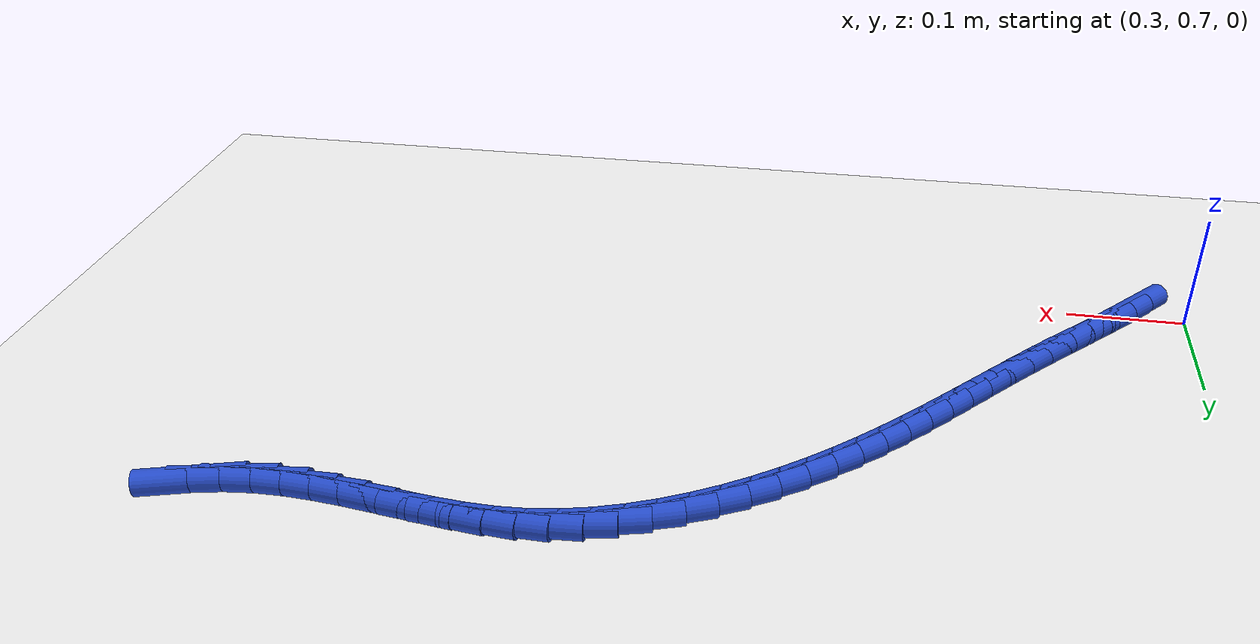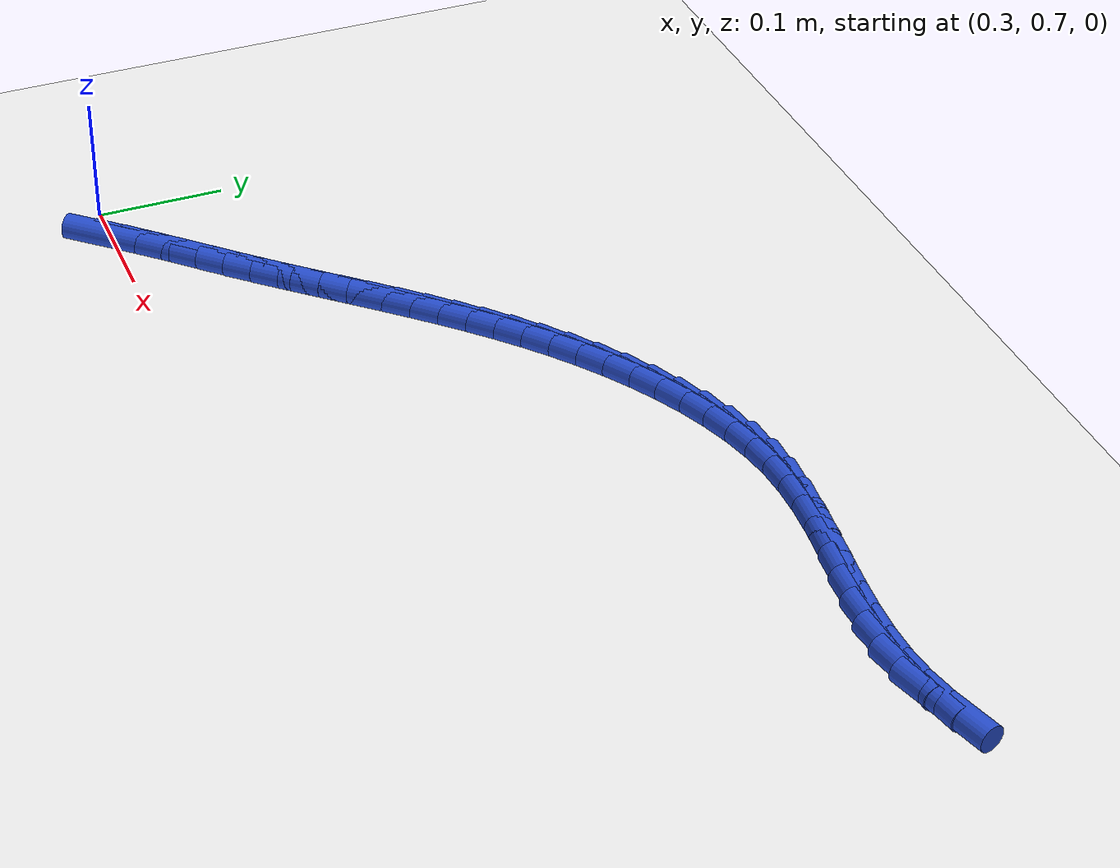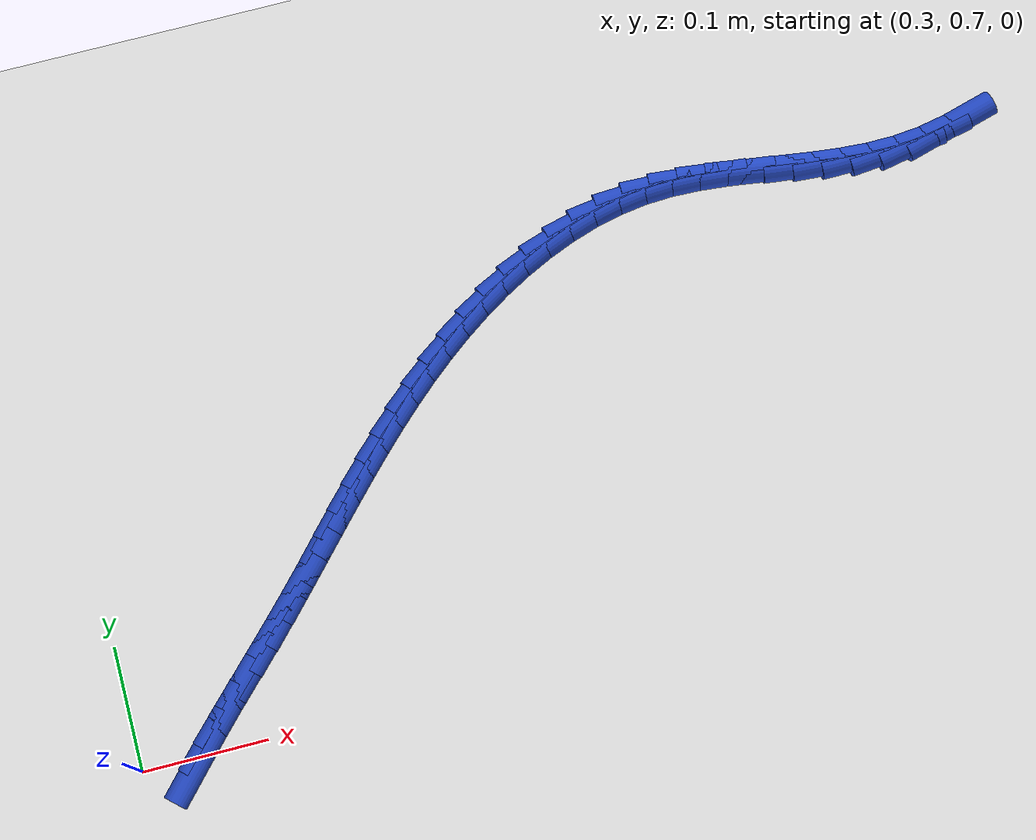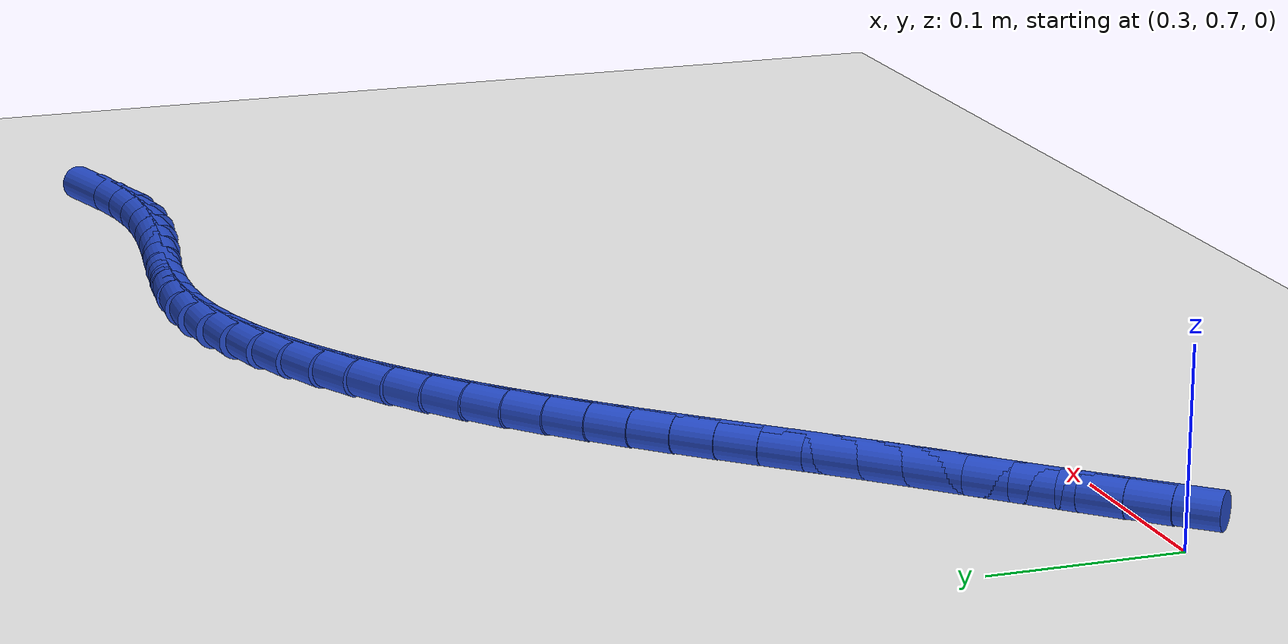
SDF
<sdf version="1.6">
 <world name="default">
  <model name="ground_plane">
   <static>1</static>
   <link name="link">
    <collision name="collision">
     <geometry><plane><normal>0 0 1</normal><size>100 100</size></plane></geometry>
     <surface><friction><ode><mu>100</mu><mu2>50</mu2></ode></friction></surface>
    </collision>
    <visual name="visual">
     <cast_shadows>0</cast_shadows>
     <geometry><plane><normal>0 0 1</normal><size>100 100</size></plane></geometry>
     <material>
      <script><uri>file://media/materials/scripts/gazebo.material</uri><name>Gazebo/WhiteGlow</name></script>
     </material>
    </visual>
   </link>
  </model>
  <model name="line">
   <link name="link_35">
    <pose>0.34696680365258775 0.6989530170740083 0.01 0 1.57 0.8330406091377653</pose>
    <collision name="collision">
     <geometry><cylinder><radius>0.01</radius><length>0.08</length></cylinder></geometry>
    </collision>
    <visual name="visual">
     <material>
      <script><name>Gazebo/Blue</name><uri>file://media/materials/scripts/gazebo.material</uri></script>
     </material>
     <geometry><cylinder><radius>0.01</radius><length>0.08</length></cylinder></geometry>
    </visual>
   </link>
   <link name="link_36">
    <pose>0.362543247465105 0.716089148202582 0.01 0 1.57 0.8127219364148226</pose>
    <collision name="collision">
     <geometry><cylinder><radius>0.01</radius><length>0.08</length></cylinder></geometry>
    </collision>
    <visual name="visual">
     <material>
      <script><name>Gazebo/Blue</name><uri>file://media/materials/scripts/gazebo.material</uri></script>
     </material>
     <geometry><cylinder><radius>0.01</radius><length>0.08</length></cylinder></geometry>
    </visual>
   </link>
   <link name="link_37">
    <pose>0.37852816036490117 0.7329723660112146 0.01 0 1.57 0.8004877120736859</pose>
    <collision name="collision">
     <geometry><cylinder><radius>0.01</radius><length>0.08</length></cylinder></geometry>
    </collision>
    <visual name="visual">
     <material>
      <script><name>Gazebo/Blue</name><uri>file://media/materials/scripts/gazebo.material</uri></script>
     </material>
     <geometry><cylinder><radius>0.01</radius><length>0.08</length></cylinder></geometry>
    </visual>
   </link>
   <link name="link_38">
    <pose>0.39475759877274863 0.749699136484317 0.01 0 1.57 0.7962165194694196</pose>
    <collision name="collision">
     <geometry><cylinder><radius>0.01</radius><length>0.08</length></cylinder></geometry>
    </collision>
    <visual name="visual">
     <material>
      <script><name>Gazebo/Blue</name><uri>file://media/materials/scripts/gazebo.material</uri></script>
     </material>
     <geometry><cylinder><radius>0.01</radius><length>0.08</length></cylinder></geometry>
    </visual>
   </link>
   <link name="link_39">
    <pose>0.4110676191094199 0.7663659256063005 0.01 0 1.57 0.7998707649653242</pose>
    <collision name="collision">
     <geometry><cylinder><radius>0.01</radius><length>0.08</length></cylinder></geometry>
    </collision>
    <visual name="visual">
     <material>
      <script><name>Gazebo/Blue</name><uri>file://media/materials/scripts/gazebo.material</uri></script>
     </material>
     <geometry><cylinder><radius>0.01</radius><length>0.08</length></cylinder></geometry>
    </visual>
   </link>
   <link name="link_40">
    <pose>0.42729427779568707 0.7830691993615756 0.01 0 1.57 0.8111536940769282</pose>
    <collision name="collision">
     <geometry><cylinder><radius>0.01</radius><length>0.08</length></cylinder></geometry>
    </collision>
    <visual name="visual">
     <material>
      <script><name>Gazebo/Blue</name><uri>file://media/materials/scripts/gazebo.material</uri></script>
     </material>
     <geometry><cylinder><radius>0.01</radius><length>0.08</length></cylinder></geometry>
    </visual>
   </link>
   <link name="link_41">
    <pose>0.4432805434828458 0.7999008960314637 0.01 0 1.57 0.8234440319376947</pose>
    <collision name="collision">
     <geometry><cylinder><radius>0.01</radius><length>0.08</length></cylinder></geometry>
    </collision>
    <visual name="visual">
     <material>
      <script><name>Gazebo/Blue</name><uri>file://media/materials/scripts/gazebo.material</uri></script>
     </material>
     <geometry><cylinder><radius>0.01</radius><length>0.08</length></cylinder></geometry>
    </visual>
   </link>
   <link name="link_42">
    <pose>0.4590017257110101 0.8168662669372408 0.01 0 1.57 0.8306716103659707</pose>
    <collision name="collision">
     <geometry><cylinder><radius>0.01</radius><length>0.08</length></cylinder></geometry>
    </collision>
    <visual name="visual">
     <material>
      <script><name>Gazebo/Blue</name><uri>file://media/materials/scripts/gazebo.material</uri></script>
     </material>
     <geometry><cylinder><radius>0.01</radius><length>0.08</length></cylinder></geometry>
    </visual>
   </link>
   <link name="link_43">
    <pose>0.4745521754985508 0.8338925879236561 0.01 0 1.57 0.8325608416837419</pose>
    <collision name="collision">
     <geometry><cylinder><radius>0.01</radius><length>0.08</length></cylinder></geometry>
    </collision>
    <visual name="visual">
     <material>
      <script><name>Gazebo/Blue</name><uri>file://media/materials/scripts/gazebo.material</uri></script>
     </material>
     <geometry><cylinder><radius>0.01</radius><length>0.08</length></cylinder></geometry>
    </visual>
   </link>
   <link name="link_44">
    <pose>0.49003048685603245 0.8509043555576565 0.01 0 1.57 0.8290675096566906</pose>
    <collision name="collision">
     <geometry><cylinder><radius>0.01</radius><length>0.08</length></cylinder></geometry>
    </collision>
    <visual name="visual">
     <material>
      <script><name>Gazebo/Blue</name><uri>file://media/materials/scripts/gazebo.material</uri></script>
     </material>
     <geometry><cylinder><radius>0.01</radius><length>0.08</length></cylinder></geometry>
    </visual>
   </link>
   <link name="link_45">
    <pose>0.5055352537940191 0.8678260664061891 0.01 0 1.57 0.8201626127285712</pose>
    <collision name="collision">
     <geometry><cylinder><radius>0.01</radius><length>0.08</length></cylinder></geometry>
    </collision>
    <visual name="visual">
     <material>
      <script><name>Gazebo/Blue</name><uri>file://media/materials/scripts/gazebo.material</uri></script>
     </material>
     <geometry><cylinder><radius>0.01</radius><length>0.08</length></cylinder></geometry>
    </visual>
   </link>
   <link name="link_46">
    <pose>0.5211650703230748 0.8845822170362005 0.01 0 1.57 0.8058357420020107</pose>
    <collision name="collision">
     <geometry><cylinder><radius>0.01</radius><length>0.08</length></cylinder></geometry>
    </collision>
    <visual name="visual">
     <material>
      <script><name>Gazebo/Blue</name><uri>file://media/materials/scripts/gazebo.material</uri></script>
     </material>
     <geometry><cylinder><radius>0.01</radius><length>0.08</length></cylinder></geometry>
    </visual>
   </link>
   <link name="link_47">
    <pose>0.537018530453764 0.9010973040146381 0.01 0 1.57 0.786103111618877</pose>
    <collision name="collision">
     <geometry><cylinder><radius>0.01</radius><length>0.08</length></cylinder></geometry>
    </collision>
    <visual name="visual">
     <material>
      <script><name>Gazebo/Blue</name><uri>file://media/materials/scripts/gazebo.material</uri></script>
     </material>
     <geometry><cylinder><radius>0.01</radius><length>0.08</length></cylinder></geometry>
    </visual>
   </link>
   <link name="link_48">
    <pose>0.5531942281966508 0.9172958239084484 0.01 0 1.57 0.7610200506081204</pose>
    <collision name="collision">
     <geometry><cylinder><radius>0.01</radius><length>0.08</length></cylinder></geometry>
    </collision>
    <visual name="visual">
     <material>
      <script><name>Gazebo/Blue</name><uri>file://media/materials/scripts/gazebo.material</uri></script>
     </material>
     <geometry><cylinder><radius>0.01</radius><length>0.08</length></cylinder></geometry>
    </visual>
   </link>
   <link name="link_49">
    <pose>0.569790757562299 0.9331022732845782 0.01 0 1.57 0.730697314627442</pose>
    <collision name="collision">
     <geometry><cylinder><radius>0.01</radius><length>0.08</length></cylinder></geometry>
    </collision>
    <visual name="visual">
     <material>
      <script><name>Gazebo/Blue</name><uri>file://media/materials/scripts/gazebo.material</uri></script>
     </material>
     <geometry><cylinder><radius>0.01</radius><length>0.08</length></cylinder></geometry>
    </visual>
   </link>
   <link name="link_50">
    <pose>0.5869067125612736 0.9484411487099748 0.01 0 1.57 0.6953199003946172</pose>
    <collision name="collision">
     <geometry><cylinder><radius>0.01</radius><length>0.08</length></cylinder></geometry>
    </collision>
    <visual name="visual">
     <material>
      <script><name>Gazebo/Blue</name><uri>file://media/materials/scripts/gazebo.material</uri></script>
     </material>
     <geometry><cylinder><radius>0.01</radius><length>0.08</length></cylinder></geometry>
    </visual>
   </link>
   <link name="link_51">
    <pose>0.6046406872041376 0.9632369467515843 0.01 0 1.57 0.6551661998020621</pose>
    <collision name="collision">
     <geometry><cylinder><radius>0.01</radius><length>0.08</length></cylinder></geometry>
    </collision>
    <visual name="visual">
     <material>
      <script><name>Gazebo/Blue</name><uri>file://media/materials/scripts/gazebo.material</uri></script>
     </material>
     <geometry><cylinder><radius>0.01</radius><length>0.08</length></cylinder></geometry>
    </visual>
   </link>
   <link name="link_52">
    <pose>0.623091268279836 0.977414159512706 0.01 0 1.57 0.6107275105724828</pose>
    <collision name="collision">
     <geometry><cylinder><radius>0.01</radius><length>0.08</length></cylinder></geometry>
    </collision>
    <visual name="visual">
     <material>
      <script><name>Gazebo/Blue</name><uri>file://media/materials/scripts/gazebo.material</uri></script>
     </material>
     <geometry><cylinder><radius>0.01</radius><length>0.08</length></cylinder></geometry>
    </visual>
   </link>
   <link name="link_53">
    <pose>0.6423208209695195 0.9908748906968274 0.01 0 1.57 0.5622989030775445</pose>
    <collision name="collision">
     <geometry><cylinder><radius>0.01</radius><length>0.08</length></cylinder></geometry>
    </collision>
    <visual name="visual">
     <material>
      <script><name>Gazebo/Blue</name><uri>file://media/materials/scripts/gazebo.material</uri></script>
     </material>
     <geometry><cylinder><radius>0.01</radius><length>0.08</length></cylinder></geometry>
    </visual>
   </link>
   <link name="link_54">
    <pose>0.6622713364170622 1.003446841399776 0.01 0 1.57 0.5092257444733604</pose>
    <collision name="collision">
     <geometry><cylinder><radius>0.01</radius><length>0.08</length></cylinder></geometry>
    </collision>
    <visual name="visual">
     <material>
      <script><name>Gazebo/Blue</name><uri>file://media/materials/scripts/gazebo.material</uri></script>
     </material>
     <geometry><cylinder><radius>0.01</radius><length>0.08</length></cylinder></geometry>
    </visual>
   </link>
   <link name="link_55">
    <pose>0.6828598322182717 1.0149422766886425 0.01 0 1.57 0.4506790373590013</pose>
    <collision name="collision">
     <geometry><cylinder><radius>0.01</radius><length>0.08</length></cylinder></geometry>
    </collision>
    <visual name="visual">
     <material>
      <script><name>Gazebo/Blue</name><uri>file://media/materials/scripts/gazebo.material</uri></script>
     </material>
     <geometry><cylinder><radius>0.01</radius><length>0.08</length></cylinder></geometry>
    </visual>
   </link>
   <link name="link_56">
    <pose>0.7040033259689559 1.025173461630518 0.01 0 1.57 0.3857992374001578</pose>
    <collision name="collision">
     <geometry><cylinder><radius>0.01</radius><length>0.08</length></cylinder></geometry>
    </collision>
    <visual name="visual">
     <material>
      <script><name>Gazebo/Blue</name><uri>file://media/materials/scripts/gazebo.material</uri></script>
     </material>
     <geometry><cylinder><radius>0.01</radius><length>0.08</length></cylinder></geometry>
    </visual>
   </link>
   <link name="link_57">
    <pose>0.7256188352649215 1.0339526612924919 0.01 0 1.57 0.31373870671372317</pose>
    <collision name="collision">
     <geometry><cylinder><radius>0.01</radius><length>0.08</length></cylinder></geometry>
    </collision>
    <visual name="visual">
     <material>
      <script><name>Gazebo/Blue</name><uri>file://media/materials/scripts/gazebo.material</uri></script>
     </material>
     <geometry><cylinder><radius>0.01</radius><length>0.08</length></cylinder></geometry>
    </visual>
   </link>
   <link name="link_58">
    <pose>0.747623377701977 1.0410921407416551 0.01 0 1.57 0.23374226082552402</pose>
    <collision name="collision">
     <geometry><cylinder><radius>0.01</radius><length>0.08</length></cylinder></geometry>
    </collision>
    <visual name="visual">
     <material>
      <script><name>Gazebo/Blue</name><uri>file://media/materials/scripts/gazebo.material</uri></script>
     </material>
     <geometry><cylinder><radius>0.01</radius><length>0.08</length></cylinder></geometry>
    </visual>
   </link>
   <link name="link_59">
    <pose>0.769933970875929 1.0464041650450986 0.01 0 1.57 0.1452763483159616</pose>
    <collision name="collision">
     <geometry><cylinder><radius>0.01</radius><length>0.08</length></cylinder></geometry>
    </collision>
    <visual name="visual">
     <material>
      <script><name>Gazebo/Blue</name><uri>file://media/materials/scripts/gazebo.material</uri></script>
     </material>
     <geometry><cylinder><radius>0.01</radius><length>0.08</length></cylinder></geometry>
    </visual>
   </link>
   <link name="link_60">
    <pose>0.7924676323825858 1.0497009992699118 0.01 0 1.57 0.05052441961582209</pose>
    <collision name="collision">
     <geometry><cylinder><radius>0.01</radius><length>0.08</length></cylinder></geometry>
    </collision>
    <visual name="visual">
     <material>
      <script><name>Gazebo/Blue</name><uri>file://media/materials/scripts/gazebo.material</uri></script>
     </material>
     <geometry><cylinder><radius>0.01</radius><length>0.08</length></cylinder></geometry>
    </visual>
   </link>
   <link name="link_61">
    <pose>0.8151463044707263 1.050847802001864 0.01 0 1.57 -0.03127269319740061</pose>
    <collision name="collision">
     <geometry><cylinder><radius>0.01</radius><length>0.08</length></cylinder></geometry>
    </collision>
    <visual name="visual">
     <material>
      <script><name>Gazebo/Blue</name><uri>file://media/materials/scripts/gazebo.material</uri></script>
     </material>
     <geometry><cylinder><radius>0.01</radius><length>0.08</length></cylinder></geometry>
    </visual>
   </link>
   <link name="link_62">
    <pose>0.8379315253385867 1.0501350144007526 0.01 0 1.57 -0.09055951067852805</pose>
    <collision name="collision">
     <geometry><cylinder><radius>0.01</radius><length>0.08</length></cylinder></geometry>
    </collision>
    <visual name="visual">
     <material>
      <script><name>Gazebo/Blue</name><uri>file://media/materials/scripts/gazebo.material</uri></script>
     </material>
     <geometry><cylinder><radius>0.01</radius><length>0.08</length></cylinder></geometry>
    </visual>
   </link>
   <link name="link_63">
    <pose>0.8608039144542238 1.0480580211030643 0.01 0 1.57 -0.12765680810451685</pose>
    <collision name="collision">
     <geometry><cylinder><radius>0.01</radius><length>0.08</length></cylinder></geometry>
    </collision>
    <visual name="visual">
     <material>
      <script><name>Gazebo/Blue</name><uri>file://media/materials/scripts/gazebo.material</uri></script>
     </material>
     <geometry><cylinder><radius>0.01</radius><length>0.08</length></cylinder></geometry>
    </visual>
   </link>
   <link name="link_64">
    <pose>0.8837442138849907 1.0451135235301154 0.01 0 1.57 -0.1432253166122556</pose>
    <collision name="collision">
     <geometry><cylinder><radius>0.01</radius><length>0.08</length></cylinder></geometry>
    </collision>
    <visual name="visual">
     <material>
      <script><name>Gazebo/Blue</name><uri>file://media/materials/scripts/gazebo.material</uri></script>
     </material>
     <geometry><cylinder><radius>0.01</radius><length>0.08</length></cylinder></geometry>
    </visual>
   </link>
   <link name="link_65">
    <pose>0.9067331656982431 1.0417982231032235 0.01 0 1.57 -0.13768248358546092</pose>
    <collision name="collision">
     <geometry><cylinder><radius>0.01</radius><length>0.08</length></cylinder></geometry>
    </collision>
    <visual name="visual">
     <material>
      <script><name>Gazebo/Blue</name><uri>file://media/materials/scripts/gazebo.material</uri></script>
     </material>
     <geometry><cylinder><radius>0.01</radius><length>0.08</length></cylinder></geometry>
    </visual>
   </link>
   <link name="link_66">
    <pose>0.9297515119613357 1.0386088212437046 0.01 0 1.57 -0.11100386574259463</pose>
    <collision name="collision">
     <geometry><cylinder><radius>0.01</radius><length>0.08</length></cylinder></geometry>
    </collision>
    <visual name="visual">
     <material>
      <script><name>Gazebo/Blue</name><uri>file://media/materials/scripts/gazebo.material</uri></script>
     </material>
     <geometry><cylinder><radius>0.01</radius><length>0.08</length></cylinder></geometry>
    </visual>
   </link>
   <link name="link_67">
    <pose>0.9527799947416227 1.0360420193728759 0.01 0 1.57 -0.06279918384728145</pose>
    <collision name="collision">
     <geometry><cylinder><radius>0.01</radius><length>0.08</length></cylinder></geometry>
    </collision>
    <visual name="visual">
     <material>
      <script><name>Gazebo/Blue</name><uri>file://media/materials/scripts/gazebo.material</uri></script>
     </material>
     <geometry><cylinder><radius>0.01</radius><length>0.08</length></cylinder></geometry>
    </visual>
   </link>
   <link name="link_68">
    <pose>0.9757993561064595 1.0345945189120545 0.01 0 1.57 0.00732893242368159</pose>
    <collision name="collision">
     <geometry><cylinder><radius>0.01</radius><length>0.08</length></cylinder></geometry>
    </collision>
    <visual name="visual">
     <material>
      <script><name>Gazebo/Blue</name><uri>file://media/materials/scripts/gazebo.material</uri></script>
     </material>
     <geometry><cylinder><radius>0.01</radius><length>0.08</length></cylinder></geometry>
    </visual>
   </link>
   <link name="link_69">
    <pose>0.9987903381232006 1.0347630212825567 0.01 0 1.57 0.09902388113082687</pose>
    <collision name="collision">
     <geometry><cylinder><radius>0.01</radius><length>0.08</length></cylinder></geometry>
    </collision>
    <visual name="visual">
     <material>
      <script><name>Gazebo/Blue</name><uri>file://media/materials/scripts/gazebo.material</uri></script>
     </material>
     <geometry><cylinder><radius>0.01</radius><length>0.08</length></cylinder></geometry>
    </visual>
   </link>
   <link name="link_70">
    <pose>1.0217336759195719 1.0370424148842305 0.01 0 1.57 0.19736277998280732</pose>
    <collision name="collision">
     <geometry><cylinder><radius>0.01</radius><length>0.08</length></cylinder></geometry>
    </collision>
    <visual name="visual">
     <material>
      <script><name>Gazebo/Blue</name><uri>file://media/materials/scripts/gazebo.material</uri></script>
     </material>
     <geometry><cylinder><radius>0.01</radius><length>0.08</length></cylinder></geometry>
    </visual>
   </link>
   <link name="link_71">
    <pose>1.0446089145835857 1.0416166827809716 0.01 0 1.57 0.273533666323467</pose>
    <collision name="collision">
     <geometry><cylinder><radius>0.01</radius><length>0.08</length></cylinder></geometry>
    </collision>
    <visual name="visual">
     <material>
      <script><name>Gazebo/Blue</name><uri>file://media/materials/scripts/gazebo.material</uri></script>
     </material>
     <geometry><cylinder><radius>0.01</radius><length>0.08</length></cylinder></geometry>
    </visual>
   </link>
  </model>
 </world>
</sdf>
